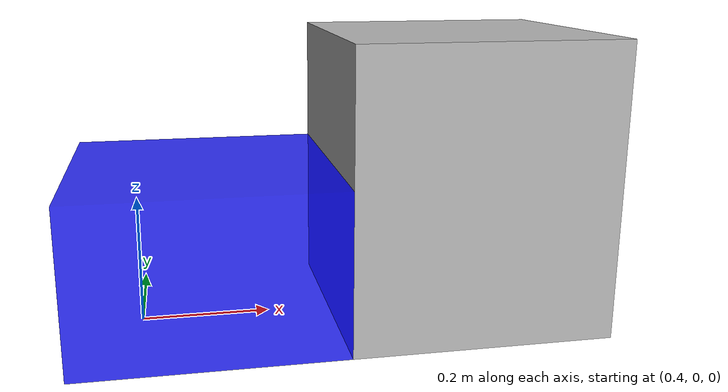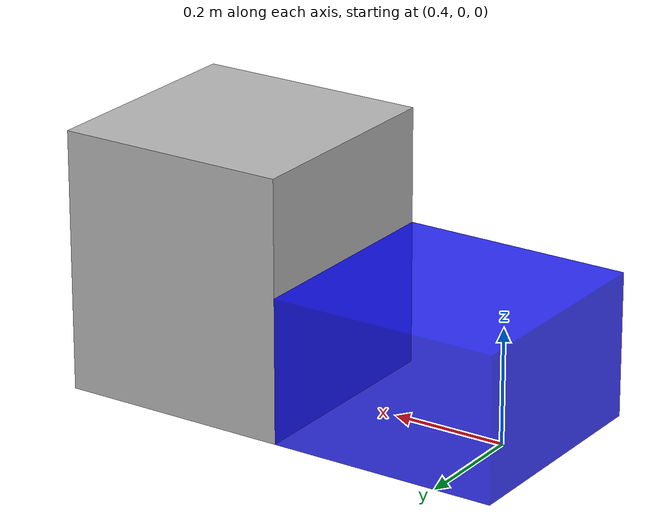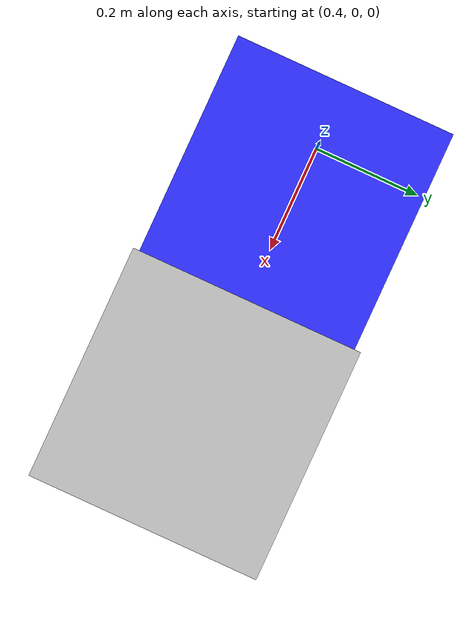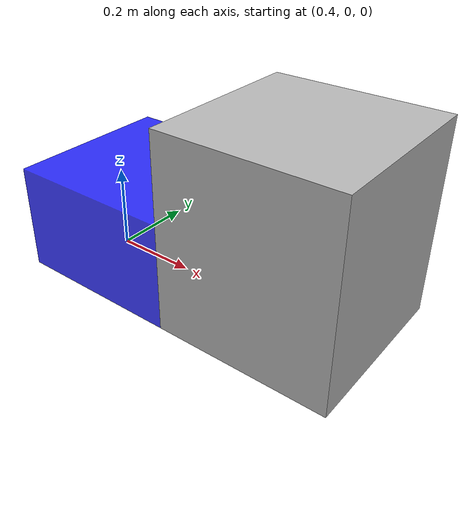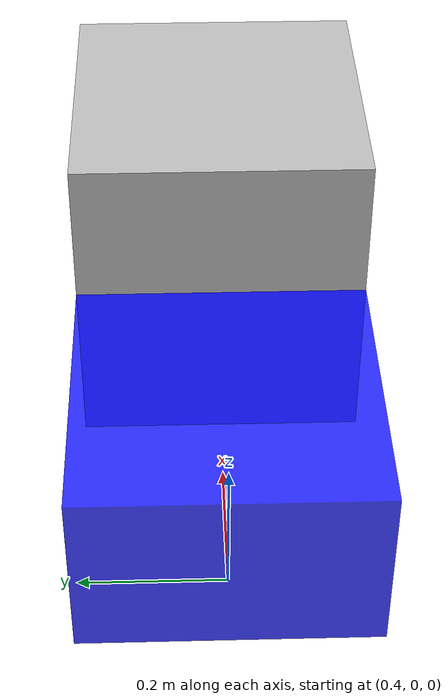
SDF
<sdf version='1.4'>
  <world name='terrain'>

    <model name='Box01'>
      <pose>0.50 0.0 0.125 0 0 0</pose>
      <link name='Box01'>
        <pose>0 0 0 0 0 0</pose>
        <collision name='collision'>
          <geometry>
            <box>
              <size>0.4 0.4 0.25</size>
            </box>
          </geometry>
        </collision>
        <visual name='visual'>
          <geometry>
            <box>
              <size>0.4 0.4 0.25</size>
            </box>
          </geometry>
          <material>
            <diffuse>0 0 1 .8</diffuse>
            <ambient>0 0 1 .8</ambient>
          </material>
        </visual>
      </link>
      <static>1</static>
    </model>

    <model name='Box02'>
      <pose>0.90 0.0 0.225 0 0 0</pose>
      <link name='Box02'>
        <pose>0 0 0 0 0 0</pose>
        <collision name='collision'>
          <geometry>
            <box>
              <size>0.4 0.4 0.45</size>
            </box>
          </geometry>
        </collision>
        <visual name='visual'>
          <geometry>
            <box>
              <size>0.4 0.4 0.45</size>
            </box>
          </geometry>
        </visual>
      </link>
      <static>1</static>
    </model>

  </world>
</sdf>
